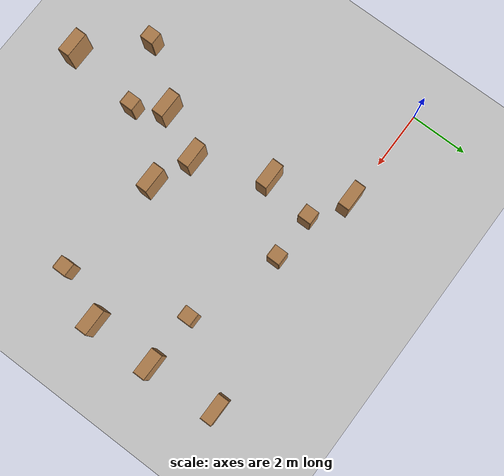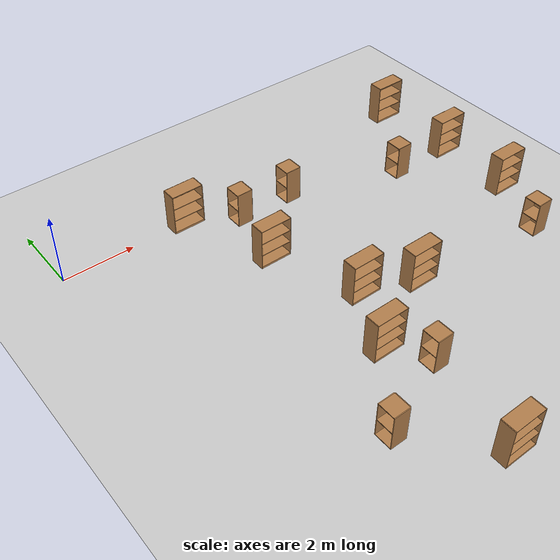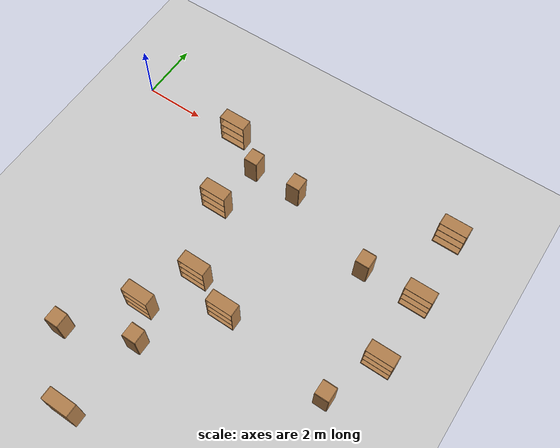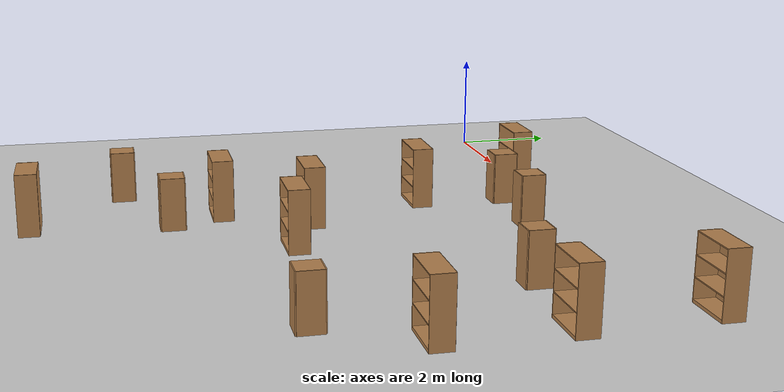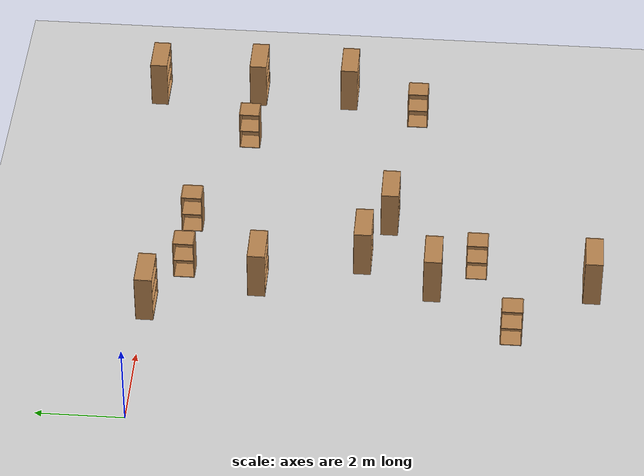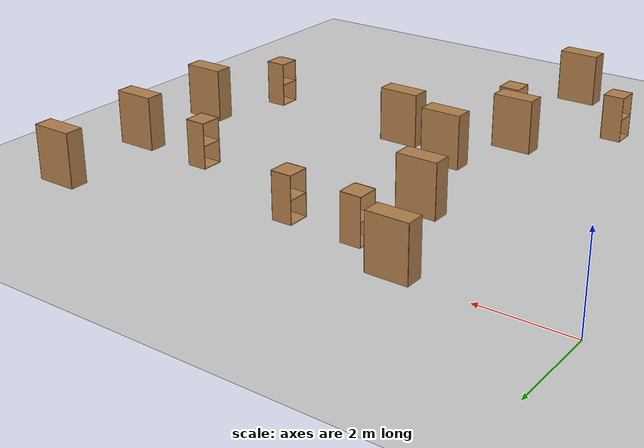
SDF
<sdf version="1.6">
 <world name="default">
  <model name="ground_plane">
   <static>1</static>
   <link name="link">
    <collision name="collision">
     <geometry><plane><normal>0 0 1</normal><size>100 100</size></plane></geometry>
     <surface><friction><ode><mu>100</mu><mu2>50</mu2></ode></friction></surface>
    </collision>
    <visual name="visual">
     <cast_shadows>0</cast_shadows>
     <geometry><plane><normal>0 0 1</normal><size>100 100</size></plane></geometry>
     <material>
      <script><uri>file://media/materials/scripts/gazebo.material</uri><name>Gazebo/Grey</name></script>
     </material>
    </visual>
   </link>
  </model>
  <model name="bookshelf_22">
   <static>1</static>
   <link name="link">
    <inertial><mass>1</mass></inertial>
    <collision name="back">
     <pose>0 0.005 0.6 0 -0 0</pose>
     <geometry><box><size>0.9 0.01 1.2</size></box></geometry>
    </collision>
    <visual name="visual1">
     <pose>0 0.005 0.6 0 -0 0</pose>
     <geometry><box><size>0.9 0.01 1.2</size></box></geometry>
     <material>
      <script><uri>file://media/materials/scripts/gazebo.material</uri><name>Gazebo/Wood</name></script>
     </material>
    </visual>
    <collision name="left_side">
     <pose>0.45 -0.195 0.6 0 -0 0</pose>
     <geometry><box><size>0.02 0.4 1.2</size></box></geometry>
    </collision>
    <visual name="visual2">
     <pose>0.45 -0.195 0.6 0 -0 0</pose>
     <geometry><box><size>0.02 0.4 1.2</size></box></geometry>
     <material>
      <script><uri>file://media/materials/scripts/gazebo.material</uri><name>Gazebo/Wood</name></script>
     </material>
    </visual>
    <collision name="right_side">
     <pose>-0.45 -0.195 0.6 0 -0 0</pose>
     <geometry><box><size>0.02 0.4 1.2</size></box></geometry>
    </collision>
    <visual name="visual3">
     <pose>-0.45 -0.195 0.6 0 -0 0</pose>
     <geometry><box><size>0.02 0.4 1.2</size></box></geometry>
     <material>
      <script><uri>file://media/materials/scripts/gazebo.material</uri><name>Gazebo/Wood</name></script>
     </material>
    </visual>
    <collision name="bottom">
     <pose>0 -0.195 0.03 0 -0 0</pose>
     <geometry><box><size>0.88 0.4 0.06</size></box></geometry>
    </collision>
    <visual name="visual4">
     <pose>0 -0.195 0.03 0 -0 0</pose>
     <geometry><box><size>0.88 0.4 0.06</size></box></geometry>
     <material>
      <script><uri>file://media/materials/scripts/gazebo.material</uri><name>Gazebo/Wood</name></script>
     </material>
    </visual>
    <collision name="top">
     <pose>0 -0.195 1.19 0 -0 0</pose>
     <geometry><box><size>0.88 0.4 0.02</size></box></geometry>
    </collision>
    <visual name="visual5">
     <pose>0 -0.195 1.19 0 -0 0</pose>
     <geometry><box><size>0.88 0.4 0.02</size></box></geometry>
     <material>
      <script><uri>file://media/materials/scripts/gazebo.material</uri><name>Gazebo/Wood</name></script>
     </material>
    </visual>
    <collision name="low_shelf">
     <pose>0 -0.195 0.43 0 -0 0</pose>
     <geometry><box><size>0.88 0.4 0.02</size></box></geometry>
    </collision>
    <visual name="visual6">
     <pose>0 -0.195 0.43 0 -0 0</pose>
     <geometry><box><size>0.88 0.4 0.02</size></box></geometry>
     <material>
      <script><uri>file://media/materials/scripts/gazebo.material</uri><name>Gazebo/Wood</name></script>
     </material>
    </visual>
    <collision name="high_shelf">
     <pose>0 -0.195 0.8 0 -0 0</pose>
     <geometry><box><size>0.88 0.4 0.02</size></box></geometry>
    </collision>
    <visual name="visual7">
     <pose>0 -0.195 0.8 0 -0 0</pose>
     <geometry><box><size>0.88 0.4 0.02</size></box></geometry>
     <material>
      <script><uri>file://media/materials/scripts/gazebo.material</uri><name>Gazebo/Wood</name></script>
     </material>
    </visual>
   </link>
   <pose>3.59906 0.149441 0 0 -0 0</pose>
  </model>
  <model name="cabinet_23">
   <static>1</static>
   <link name="cabinet_bottom_plate">
    <inertial>
     <pose>0 0 -1 0 -0 0</pose>
     <inertia><ixx>2.05</ixx><ixy>0</ixy><ixz>0</ixz><iyy>2.05</iyy><iyz>0</iyz><izz>2.05</izz></inertia>
     <mass>25</mass>
    </inertial>
    <collision name="cabinet_bottom_plate_geom">
     <pose>0 0 0.01 0 -0 0</pose>
     <geometry><box><size>0.45 0.45 0.02</size></box></geometry>
    </collision>
    <visual name="cabinet_bottom_plate_geom_visual">
     <pose>0 0 0.01 0 -0 0</pose>
     <geometry><box><size>0.45 0.45 0.02</size></box></geometry>
     <material>
      <script><uri>file://media/materials/scripts/gazebo.material</uri><name>Gazebo/Wood</name></script>
     </material>
    </visual>
    <collision name="cabinet_bottom_plate_geom_cabinet_back_plate">
     <pose>0.235 0 0.51 0 -0 0</pose>
     <geometry><box><size>0.02 0.45 1.02</size></box></geometry>
    </collision>
    <visual name="cabinet_bottom_plate_geom_cabinet_back_plate_visual">
     <pose>0.235 0 0.51 0 -0 0</pose>
     <geometry><box><size>0.02 0.45 1.02</size></box></geometry>
     <material>
      <script><uri>file://media/materials/scripts/gazebo.material</uri><name>Gazebo/Wood</name></script>
     </material>
    </visual>
    <collision name="cabinet_bottom_plate_geom_cabinet_left_plate">
     <pose>0 0.235 0.51 0 -0 0</pose>
     <geometry><box><size>0.45 0.02 1.02</size></box></geometry>
    </collision>
    <visual name="cabinet_bottom_plate_geom_cabinet_left_plate_visual">
     <pose>0 0.235 0.51 0 -0 0</pose>
     <geometry><box><size>0.45 0.02 1.02</size></box></geometry>
     <material>
      <script><uri>file://media/materials/scripts/gazebo.material</uri><name>Gazebo/Wood</name></script>
     </material>
    </visual>
    <collision name="cabinet_bottom_plate_geom_cabinet_middle_plate">
     <pose>0 0 0.51 0 -0 0</pose>
     <geometry><box><size>0.45 0.45 0.02</size></box></geometry>
    </collision>
    <visual name="cabinet_bottom_plate_geom_cabinet_middle_plate_visual">
     <pose>0 0 0.51 0 -0 0</pose>
     <geometry><box><size>0.45 0.45 0.02</size></box></geometry>
     <material>
      <script><uri>file://media/materials/scripts/gazebo.material</uri><name>Gazebo/Wood</name></script>
     </material>
    </visual>
    <collision name="cabinet_bottom_plate_geom_cabinet_right_plate">
     <pose>0 -0.235 0.51 0 -0 0</pose>
     <geometry><box><size>0.45 0.02 1.02</size></box></geometry>
    </collision>
    <visual name="cabinet_bottom_plate_geom_cabinet_right_plate_visual">
     <pose>0 -0.235 0.51 0 -0 0</pose>
     <geometry><box><size>0.45 0.02 1.02</size></box></geometry>
     <material>
      <script><uri>file://media/materials/scripts/gazebo.material</uri><name>Gazebo/Wood</name></script>
     </material>
    </visual>
    <collision name="cabinet_bottom_plate_geom_cabinet_top_plate">
     <pose>0 0 1.01 0 -0 0</pose>
     <geometry><box><size>0.45 0.45 0.02</size></box></geometry>
    </collision>
    <visual name="cabinet_bottom_plate_geom_cabinet_top_plate_visual">
     <pose>0 0 1.01 0 -0 0</pose>
     <geometry><box><size>0.45 0.45 0.02</size></box></geometry>
     <material>
      <script><uri>file://media/materials/scripts/gazebo.material</uri><name>Gazebo/Wood</name></script>
     </material>
    </visual>
   </link>
   <pose>4.84818 -0.780308 0 0 -0 0</pose>
  </model>
  <model name="cabinet_24">
   <static>1</static>
   <link name="cabinet_bottom_plate">
    <inertial>
     <pose>0 0 -1 0 -0 0</pose>
     <inertia><ixx>2.05</ixx><ixy>0</ixy><ixz>0</ixz><iyy>2.05</iyy><iyz>0</iyz><izz>2.05</izz></inertia>
     <mass>25</mass>
    </inertial>
    <collision name="cabinet_bottom_plate_geom">
     <pose>0 0 0.01 0 -0 0</pose>
     <geometry><box><size>0.45 0.45 0.02</size></box></geometry>
    </collision>
    <visual name="cabinet_bottom_plate_geom_visual">
     <pose>0 0 0.01 0 -0 0</pose>
     <geometry><box><size>0.45 0.45 0.02</size></box></geometry>
     <material>
      <script><uri>file://media/materials/scripts/gazebo.material</uri><name>Gazebo/Wood</name></script>
     </material>
    </visual>
    <collision name="cabinet_bottom_plate_geom_cabinet_back_plate">
     <pose>0.235 0 0.51 0 -0 0</pose>
     <geometry><box><size>0.02 0.45 1.02</size></box></geometry>
    </collision>
    <visual name="cabinet_bottom_plate_geom_cabinet_back_plate_visual">
     <pose>0.235 0 0.51 0 -0 0</pose>
     <geometry><box><size>0.02 0.45 1.02</size></box></geometry>
     <material>
      <script><uri>file://media/materials/scripts/gazebo.material</uri><name>Gazebo/Wood</name></script>
     </material>
    </visual>
    <collision name="cabinet_bottom_plate_geom_cabinet_left_plate">
     <pose>0 0.235 0.51 0 -0 0</pose>
     <geometry><box><size>0.45 0.02 1.02</size></box></geometry>
    </collision>
    <visual name="cabinet_bottom_plate_geom_cabinet_left_plate_visual">
     <pose>0 0.235 0.51 0 -0 0</pose>
     <geometry><box><size>0.45 0.02 1.02</size></box></geometry>
     <material>
      <script><uri>file://media/materials/scripts/gazebo.material</uri><name>Gazebo/Wood</name></script>
     </material>
    </visual>
    <collision name="cabinet_bottom_plate_geom_cabinet_middle_plate">
     <pose>0 0 0.51 0 -0 0</pose>
     <geometry><box><size>0.45 0.45 0.02</size></box></geometry>
    </collision>
    <visual name="cabinet_bottom_plate_geom_cabinet_middle_plate_visual">
     <pose>0 0 0.51 0 -0 0</pose>
     <geometry><box><size>0.45 0.45 0.02</size></box></geometry>
     <material>
      <script><uri>file://media/materials/scripts/gazebo.material</uri><name>Gazebo/Wood</name></script>
     </material>
    </visual>
    <collision name="cabinet_bottom_plate_geom_cabinet_right_plate">
     <pose>0 -0.235 0.51 0 -0 0</pose>
     <geometry><box><size>0.45 0.02 1.02</size></box></geometry>
    </collision>
    <visual name="cabinet_bottom_plate_geom_cabinet_right_plate_visual">
     <pose>0 -0.235 0.51 0 -0 0</pose>
     <geometry><box><size>0.45 0.02 1.02</size></box></geometry>
     <material>
      <script><uri>file://media/materials/scripts/gazebo.material</uri><name>Gazebo/Wood</name></script>
     </material>
    </visual>
    <collision name="cabinet_bottom_plate_geom_cabinet_top_plate">
     <pose>0 0 1.01 0 -0 0</pose>
     <geometry><box><size>0.45 0.45 0.02</size></box></geometry>
    </collision>
    <visual name="cabinet_bottom_plate_geom_cabinet_top_plate_visual">
     <pose>0 0 1.01 0 -0 0</pose>
     <geometry><box><size>0.45 0.45 0.02</size></box></geometry>
     <material>
      <script><uri>file://media/materials/scripts/gazebo.material</uri><name>Gazebo/Wood</name></script>
     </material>
    </visual>
   </link>
   <pose>6.45007 -0.797317 0 0 -0 0</pose>
  </model>
  <model name="bookshelf_28">
   <static>1</static>
   <link name="link">
    <inertial><mass>1</mass></inertial>
    <collision name="back">
     <pose>0 0.005 0.6 0 -0 0</pose>
     <geometry><box><size>0.9 0.01 1.2</size></box></geometry>
    </collision>
    <visual name="visual1">
     <pose>0 0.005 0.6 0 -0 0</pose>
     <geometry><box><size>0.9 0.01 1.2</size></box></geometry>
     <material>
      <script><uri>file://media/materials/scripts/gazebo.material</uri><name>Gazebo/Wood</name></script>
     </material>
    </visual>
    <collision name="left_side">
     <pose>0.45 -0.195 0.6 0 -0 0</pose>
     <geometry><box><size>0.02 0.4 1.2</size></box></geometry>
    </collision>
    <visual name="visual2">
     <pose>0.45 -0.195 0.6 0 -0 0</pose>
     <geometry><box><size>0.02 0.4 1.2</size></box></geometry>
     <material>
      <script><uri>file://media/materials/scripts/gazebo.material</uri><name>Gazebo/Wood</name></script>
     </material>
    </visual>
    <collision name="right_side">
     <pose>-0.45 -0.195 0.6 0 -0 0</pose>
     <geometry><box><size>0.02 0.4 1.2</size></box></geometry>
    </collision>
    <visual name="visual3">
     <pose>-0.45 -0.195 0.6 0 -0 0</pose>
     <geometry><box><size>0.02 0.4 1.2</size></box></geometry>
     <material>
      <script><uri>file://media/materials/scripts/gazebo.material</uri><name>Gazebo/Wood</name></script>
     </material>
    </visual>
    <collision name="bottom">
     <pose>0 -0.195 0.03 0 -0 0</pose>
     <geometry><box><size>0.88 0.4 0.06</size></box></geometry>
    </collision>
    <visual name="visual4">
     <pose>0 -0.195 0.03 0 -0 0</pose>
     <geometry><box><size>0.88 0.4 0.06</size></box></geometry>
     <material>
      <script><uri>file://media/materials/scripts/gazebo.material</uri><name>Gazebo/Wood</name></script>
     </material>
    </visual>
    <collision name="top">
     <pose>0 -0.195 1.19 0 -0 0</pose>
     <geometry><box><size>0.88 0.4 0.02</size></box></geometry>
    </collision>
    <visual name="visual5">
     <pose>0 -0.195 1.19 0 -0 0</pose>
     <geometry><box><size>0.88 0.4 0.02</size></box></geometry>
     <material>
      <script><uri>file://media/materials/scripts/gazebo.material</uri><name>Gazebo/Wood</name></script>
     </material>
    </visual>
    <collision name="low_shelf">
     <pose>0 -0.195 0.43 0 -0 0</pose>
     <geometry><box><size>0.88 0.4 0.02</size></box></geometry>
    </collision>
    <visual name="visual6">
     <pose>0 -0.195 0.43 0 -0 0</pose>
     <geometry><box><size>0.88 0.4 0.02</size></box></geometry>
     <material>
      <script><uri>file://media/materials/scripts/gazebo.material</uri><name>Gazebo/Wood</name></script>
     </material>
    </visual>
    <collision name="high_shelf">
     <pose>0 -0.195 0.8 0 -0 0</pose>
     <geometry><box><size>0.88 0.4 0.02</size></box></geometry>
    </collision>
    <visual name="visual7">
     <pose>0 -0.195 0.8 0 -0 0</pose>
     <geometry><box><size>0.88 0.4 0.02</size></box></geometry>
     <material>
      <script><uri>file://media/materials/scripts/gazebo.material</uri><name>Gazebo/Wood</name></script>
     </material>
    </visual>
   </link>
   <pose>4.57765 -2.30177 0 0 -0 0</pose>
  </model>
  <model name="bookshelf_29">
   <static>1</static>
   <link name="link">
    <inertial><mass>1</mass></inertial>
    <collision name="back">
     <pose>0 0.005 0.6 0 -0 0</pose>
     <geometry><box><size>0.9 0.01 1.2</size></box></geometry>
    </collision>
    <visual name="visual1">
     <pose>0 0.005 0.6 0 -0 0</pose>
     <geometry><box><size>0.9 0.01 1.2</size></box></geometry>
     <material>
      <script><uri>file://media/materials/scripts/gazebo.material</uri><name>Gazebo/Wood</name></script>
     </material>
    </visual>
    <collision name="left_side">
     <pose>0.45 -0.195 0.6 0 -0 0</pose>
     <geometry><box><size>0.02 0.4 1.2</size></box></geometry>
    </collision>
    <visual name="visual2">
     <pose>0.45 -0.195 0.6 0 -0 0</pose>
     <geometry><box><size>0.02 0.4 1.2</size></box></geometry>
     <material>
      <script><uri>file://media/materials/scripts/gazebo.material</uri><name>Gazebo/Wood</name></script>
     </material>
    </visual>
    <collision name="right_side">
     <pose>-0.45 -0.195 0.6 0 -0 0</pose>
     <geometry><box><size>0.02 0.4 1.2</size></box></geometry>
    </collision>
    <visual name="visual3">
     <pose>-0.45 -0.195 0.6 0 -0 0</pose>
     <geometry><box><size>0.02 0.4 1.2</size></box></geometry>
     <material>
      <script><uri>file://media/materials/scripts/gazebo.material</uri><name>Gazebo/Wood</name></script>
     </material>
    </visual>
    <collision name="bottom">
     <pose>0 -0.195 0.03 0 -0 0</pose>
     <geometry><box><size>0.88 0.4 0.06</size></box></geometry>
    </collision>
    <visual name="visual4">
     <pose>0 -0.195 0.03 0 -0 0</pose>
     <geometry><box><size>0.88 0.4 0.06</size></box></geometry>
     <material>
      <script><uri>file://media/materials/scripts/gazebo.material</uri><name>Gazebo/Wood</name></script>
     </material>
    </visual>
    <collision name="top">
     <pose>0 -0.195 1.19 0 -0 0</pose>
     <geometry><box><size>0.88 0.4 0.02</size></box></geometry>
    </collision>
    <visual name="visual5">
     <pose>0 -0.195 1.19 0 -0 0</pose>
     <geometry><box><size>0.88 0.4 0.02</size></box></geometry>
     <material>
      <script><uri>file://media/materials/scripts/gazebo.material</uri><name>Gazebo/Wood</name></script>
     </material>
    </visual>
    <collision name="low_shelf">
     <pose>0 -0.195 0.43 0 -0 0</pose>
     <geometry><box><size>0.88 0.4 0.02</size></box></geometry>
    </collision>
    <visual name="visual6">
     <pose>0 -0.195 0.43 0 -0 0</pose>
     <geometry><box><size>0.88 0.4 0.02</size></box></geometry>
     <material>
      <script><uri>file://media/materials/scripts/gazebo.material</uri><name>Gazebo/Wood</name></script>
     </material>
    </visual>
    <collision name="high_shelf">
     <pose>0 -0.195 0.8 0 -0 0</pose>
     <geometry><box><size>0.88 0.4 0.02</size></box></geometry>
    </collision>
    <visual name="visual7">
     <pose>0 -0.195 0.8 0 -0 0</pose>
     <geometry><box><size>0.88 0.4 0.02</size></box></geometry>
     <material>
      <script><uri>file://media/materials/scripts/gazebo.material</uri><name>Gazebo/Wood</name></script>
     </material>
    </visual>
   </link>
   <pose>5.49733 -4.66083 0 0 -0 0</pose>
  </model>
  <model name="bookshelf_30">
   <static>1</static>
   <link name="link">
    <inertial><mass>1</mass></inertial>
    <collision name="back">
     <pose>0 0.005 0.6 0 -0 0</pose>
     <geometry><box><size>0.9 0.01 1.2</size></box></geometry>
    </collision>
    <visual name="visual1">
     <pose>0 0.005 0.6 0 -0 0</pose>
     <geometry><box><size>0.9 0.01 1.2</size></box></geometry>
     <material>
      <script><uri>file://media/materials/scripts/gazebo.material</uri><name>Gazebo/Wood</name></script>
     </material>
    </visual>
    <collision name="left_side">
     <pose>0.45 -0.195 0.6 0 -0 0</pose>
     <geometry><box><size>0.02 0.4 1.2</size></box></geometry>
    </collision>
    <visual name="visual2">
     <pose>0.45 -0.195 0.6 0 -0 0</pose>
     <geometry><box><size>0.02 0.4 1.2</size></box></geometry>
     <material>
      <script><uri>file://media/materials/scripts/gazebo.material</uri><name>Gazebo/Wood</name></script>
     </material>
    </visual>
    <collision name="right_side">
     <pose>-0.45 -0.195 0.6 0 -0 0</pose>
     <geometry><box><size>0.02 0.4 1.2</size></box></geometry>
    </collision>
    <visual name="visual3">
     <pose>-0.45 -0.195 0.6 0 -0 0</pose>
     <geometry><box><size>0.02 0.4 1.2</size></box></geometry>
     <material>
      <script><uri>file://media/materials/scripts/gazebo.material</uri><name>Gazebo/Wood</name></script>
     </material>
    </visual>
    <collision name="bottom">
     <pose>0 -0.195 0.03 0 -0 0</pose>
     <geometry><box><size>0.88 0.4 0.06</size></box></geometry>
    </collision>
    <visual name="visual4">
     <pose>0 -0.195 0.03 0 -0 0</pose>
     <geometry><box><size>0.88 0.4 0.06</size></box></geometry>
     <material>
      <script><uri>file://media/materials/scripts/gazebo.material</uri><name>Gazebo/Wood</name></script>
     </material>
    </visual>
    <collision name="top">
     <pose>0 -0.195 1.19 0 -0 0</pose>
     <geometry><box><size>0.88 0.4 0.02</size></box></geometry>
    </collision>
    <visual name="visual5">
     <pose>0 -0.195 1.19 0 -0 0</pose>
     <geometry><box><size>0.88 0.4 0.02</size></box></geometry>
     <material>
      <script><uri>file://media/materials/scripts/gazebo.material</uri><name>Gazebo/Wood</name></script>
     </material>
    </visual>
    <collision name="low_shelf">
     <pose>0 -0.195 0.43 0 -0 0</pose>
     <geometry><box><size>0.88 0.4 0.02</size></box></geometry>
    </collision>
    <visual name="visual6">
     <pose>0 -0.195 0.43 0 -0 0</pose>
     <geometry><box><size>0.88 0.4 0.02</size></box></geometry>
     <material>
      <script><uri>file://media/materials/scripts/gazebo.material</uri><name>Gazebo/Wood</name></script>
     </material>
    </visual>
    <collision name="high_shelf">
     <pose>0 -0.195 0.8 0 -0 0</pose>
     <geometry><box><size>0.88 0.4 0.02</size></box></geometry>
    </collision>
    <visual name="visual7">
     <pose>0 -0.195 0.8 0 -0 0</pose>
     <geometry><box><size>0.88 0.4 0.02</size></box></geometry>
     <material>
      <script><uri>file://media/materials/scripts/gazebo.material</uri><name>Gazebo/Wood</name></script>
     </material>
    </visual>
   </link>
   <pose>6.89646 -5.20465 0 0 -0 0</pose>
  </model>
  <model name="bookshelf_31">
   <static>1</static>
   <link name="link">
    <inertial><mass>1</mass></inertial>
    <collision name="back">
     <pose>0 0.005 0.6 0 -0 0</pose>
     <geometry><box><size>0.9 0.01 1.2</size></box></geometry>
    </collision>
    <visual name="visual1">
     <pose>0 0.005 0.6 0 -0 0</pose>
     <geometry><box><size>0.9 0.01 1.2</size></box></geometry>
     <material>
      <script><uri>file://media/materials/scripts/gazebo.material</uri><name>Gazebo/Wood</name></script>
     </material>
    </visual>
    <collision name="left_side">
     <pose>0.45 -0.195 0.6 0 -0 0</pose>
     <geometry><box><size>0.02 0.4 1.2</size></box></geometry>
    </collision>
    <visual name="visual2">
     <pose>0.45 -0.195 0.6 0 -0 0</pose>
     <geometry><box><size>0.02 0.4 1.2</size></box></geometry>
     <material>
      <script><uri>file://media/materials/scripts/gazebo.material</uri><name>Gazebo/Wood</name></script>
     </material>
    </visual>
    <collision name="right_side">
     <pose>-0.45 -0.195 0.6 0 -0 0</pose>
     <geometry><box><size>0.02 0.4 1.2</size></box></geometry>
    </collision>
    <visual name="visual3">
     <pose>-0.45 -0.195 0.6 0 -0 0</pose>
     <geometry><box><size>0.02 0.4 1.2</size></box></geometry>
     <material>
      <script><uri>file://media/materials/scripts/gazebo.material</uri><name>Gazebo/Wood</name></script>
     </material>
    </visual>
    <collision name="bottom">
     <pose>0 -0.195 0.03 0 -0 0</pose>
     <geometry><box><size>0.88 0.4 0.06</size></box></geometry>
    </collision>
    <visual name="visual4">
     <pose>0 -0.195 0.03 0 -0 0</pose>
     <geometry><box><size>0.88 0.4 0.06</size></box></geometry>
     <material>
      <script><uri>file://media/materials/scripts/gazebo.material</uri><name>Gazebo/Wood</name></script>
     </material>
    </visual>
    <collision name="top">
     <pose>0 -0.195 1.19 0 -0 0</pose>
     <geometry><box><size>0.88 0.4 0.02</size></box></geometry>
    </collision>
    <visual name="visual5">
     <pose>0 -0.195 1.19 0 -0 0</pose>
     <geometry><box><size>0.88 0.4 0.02</size></box></geometry>
     <material>
      <script><uri>file://media/materials/scripts/gazebo.material</uri><name>Gazebo/Wood</name></script>
     </material>
    </visual>
    <collision name="low_shelf">
     <pose>0 -0.195 0.43 0 -0 0</pose>
     <geometry><box><size>0.88 0.4 0.02</size></box></geometry>
    </collision>
    <visual name="visual6">
     <pose>0 -0.195 0.43 0 -0 0</pose>
     <geometry><box><size>0.88 0.4 0.02</size></box></geometry>
     <material>
      <script><uri>file://media/materials/scripts/gazebo.material</uri><name>Gazebo/Wood</name></script>
     </material>
    </visual>
    <collision name="high_shelf">
     <pose>0 -0.195 0.8 0 -0 0</pose>
     <geometry><box><size>0.88 0.4 0.02</size></box></geometry>
    </collision>
    <visual name="visual7">
     <pose>0 -0.195 0.8 0 -0 0</pose>
     <geometry><box><size>0.88 0.4 0.02</size></box></geometry>
     <material>
      <script><uri>file://media/materials/scripts/gazebo.material</uri><name>Gazebo/Wood</name></script>
     </material>
    </visual>
   </link>
   <pose>4.69604 -6.30017 0 0 -0 0</pose>
  </model>
  <model name="cabinet_36">
   <static>1</static>
   <link name="cabinet_bottom_plate">
    <inertial>
     <pose>0 0 -1 0 -0 0</pose>
     <inertia><ixx>2.05</ixx><ixy>0</ixy><ixz>0</ixz><iyy>2.05</iyy><iyz>0</iyz><izz>2.05</izz></inertia>
     <mass>25</mass>
    </inertial>
    <collision name="cabinet_bottom_plate_geom">
     <pose>0 0 0.01 0 -0 0</pose>
     <geometry><box><size>0.45 0.45 0.02</size></box></geometry>
    </collision>
    <visual name="cabinet_bottom_plate_geom_visual">
     <pose>0 0 0.01 0 -0 0</pose>
     <geometry><box><size>0.45 0.45 0.02</size></box></geometry>
     <material>
      <script><uri>file://media/materials/scripts/gazebo.material</uri><name>Gazebo/Wood</name></script>
     </material>
    </visual>
    <collision name="cabinet_bottom_plate_geom_cabinet_back_plate">
     <pose>0.235 0 0.51 0 -0 0</pose>
     <geometry><box><size>0.02 0.45 1.02</size></box></geometry>
    </collision>
    <visual name="cabinet_bottom_plate_geom_cabinet_back_plate_visual">
     <pose>0.235 0 0.51 0 -0 0</pose>
     <geometry><box><size>0.02 0.45 1.02</size></box></geometry>
     <material>
      <script><uri>file://media/materials/scripts/gazebo.material</uri><name>Gazebo/Wood</name></script>
     </material>
    </visual>
    <collision name="cabinet_bottom_plate_geom_cabinet_left_plate">
     <pose>0 0.235 0.51 0 -0 0</pose>
     <geometry><box><size>0.45 0.02 1.02</size></box></geometry>
    </collision>
    <visual name="cabinet_bottom_plate_geom_cabinet_left_plate_visual">
     <pose>0 0.235 0.51 0 -0 0</pose>
     <geometry><box><size>0.45 0.02 1.02</size></box></geometry>
     <material>
      <script><uri>file://media/materials/scripts/gazebo.material</uri><name>Gazebo/Wood</name></script>
     </material>
    </visual>
    <collision name="cabinet_bottom_plate_geom_cabinet_middle_plate">
     <pose>0 0 0.51 0 -0 0</pose>
     <geometry><box><size>0.45 0.45 0.02</size></box></geometry>
    </collision>
    <visual name="cabinet_bottom_plate_geom_cabinet_middle_plate_visual">
     <pose>0 0 0.51 0 -0 0</pose>
     <geometry><box><size>0.45 0.45 0.02</size></box></geometry>
     <material>
      <script><uri>file://media/materials/scripts/gazebo.material</uri><name>Gazebo/Wood</name></script>
     </material>
    </visual>
    <collision name="cabinet_bottom_plate_geom_cabinet_right_plate">
     <pose>0 -0.235 0.51 0 -0 0</pose>
     <geometry><box><size>0.45 0.02 1.02</size></box></geometry>
    </collision>
    <visual name="cabinet_bottom_plate_geom_cabinet_right_plate_visual">
     <pose>0 -0.235 0.51 0 -0 0</pose>
     <geometry><box><size>0.45 0.02 1.02</size></box></geometry>
     <material>
      <script><uri>file://media/materials/scripts/gazebo.material</uri><name>Gazebo/Wood</name></script>
     </material>
    </visual>
    <collision name="cabinet_bottom_plate_geom_cabinet_top_plate">
     <pose>0 0 1.01 0 -0 0</pose>
     <geometry><box><size>0.45 0.45 0.02</size></box></geometry>
    </collision>
    <visual name="cabinet_bottom_plate_geom_cabinet_top_plate_visual">
     <pose>0 0 1.01 0 -0 0</pose>
     <geometry><box><size>0.45 0.45 0.02</size></box></geometry>
     <material>
      <script><uri>file://media/materials/scripts/gazebo.material</uri><name>Gazebo/Wood</name></script>
     </material>
    </visual>
   </link>
   <pose>3.16675 -8.33237 0 0 -0 0</pose>
  </model>
  <model name="bookshelf_37">
   <static>1</static>
   <link name="link">
    <inertial><mass>1</mass></inertial>
    <collision name="back">
     <pose>0 0.005 0.6 0 -0 0</pose>
     <geometry><box><size>0.9 0.01 1.2</size></box></geometry>
    </collision>
    <visual name="visual1">
     <pose>0 0.005 0.6 0 -0 0</pose>
     <geometry><box><size>0.9 0.01 1.2</size></box></geometry>
     <material>
      <script><uri>file://media/materials/scripts/gazebo.material</uri><name>Gazebo/Wood</name></script>
     </material>
    </visual>
    <collision name="left_side">
     <pose>0.45 -0.195 0.6 0 -0 0</pose>
     <geometry><box><size>0.02 0.4 1.2</size></box></geometry>
    </collision>
    <visual name="visual2">
     <pose>0.45 -0.195 0.6 0 -0 0</pose>
     <geometry><box><size>0.02 0.4 1.2</size></box></geometry>
     <material>
      <script><uri>file://media/materials/scripts/gazebo.material</uri><name>Gazebo/Wood</name></script>
     </material>
    </visual>
    <collision name="right_side">
     <pose>-0.45 -0.195 0.6 0 -0 0</pose>
     <geometry><box><size>0.02 0.4 1.2</size></box></geometry>
    </collision>
    <visual name="visual3">
     <pose>-0.45 -0.195 0.6 0 -0 0</pose>
     <geometry><box><size>0.02 0.4 1.2</size></box></geometry>
     <material>
      <script><uri>file://media/materials/scripts/gazebo.material</uri><name>Gazebo/Wood</name></script>
     </material>
    </visual>
    <collision name="bottom">
     <pose>0 -0.195 0.03 0 -0 0</pose>
     <geometry><box><size>0.88 0.4 0.06</size></box></geometry>
    </collision>
    <visual name="visual4">
     <pose>0 -0.195 0.03 0 -0 0</pose>
     <geometry><box><size>0.88 0.4 0.06</size></box></geometry>
     <material>
      <script><uri>file://media/materials/scripts/gazebo.material</uri><name>Gazebo/Wood</name></script>
     </material>
    </visual>
    <collision name="top">
     <pose>0 -0.195 1.19 0 -0 0</pose>
     <geometry><box><size>0.88 0.4 0.02</size></box></geometry>
    </collision>
    <visual name="visual5">
     <pose>0 -0.195 1.19 0 -0 0</pose>
     <geometry><box><size>0.88 0.4 0.02</size></box></geometry>
     <material>
      <script><uri>file://media/materials/scripts/gazebo.material</uri><name>Gazebo/Wood</name></script>
     </material>
    </visual>
    <collision name="low_shelf">
     <pose>0 -0.195 0.43 0 -0 0</pose>
     <geometry><box><size>0.88 0.4 0.02</size></box></geometry>
    </collision>
    <visual name="visual6">
     <pose>0 -0.195 0.43 0 -0 0</pose>
     <geometry><box><size>0.88 0.4 0.02</size></box></geometry>
     <material>
      <script><uri>file://media/materials/scripts/gazebo.material</uri><name>Gazebo/Wood</name></script>
     </material>
    </visual>
    <collision name="high_shelf">
     <pose>0 -0.195 0.8 0 -0 0</pose>
     <geometry><box><size>0.88 0.4 0.02</size></box></geometry>
    </collision>
    <visual name="visual7">
     <pose>0 -0.195 0.8 0 -0 0</pose>
     <geometry><box><size>0.88 0.4 0.02</size></box></geometry>
     <material>
      <script><uri>file://media/materials/scripts/gazebo.material</uri><name>Gazebo/Wood</name></script>
     </material>
    </visual>
   </link>
   <pose>11.2942 0.695098 0 0 -0 0</pose>
  </model>
  <model name="bookshelf_38">
   <static>1</static>
   <link name="link">
    <inertial><mass>1</mass></inertial>
    <collision name="back">
     <pose>0 0.005 0.6 0 -0 0</pose>
     <geometry><box><size>0.9 0.01 1.2</size></box></geometry>
    </collision>
    <visual name="visual1">
     <pose>0 0.005 0.6 0 -0 0</pose>
     <geometry><box><size>0.9 0.01 1.2</size></box></geometry>
     <material>
      <script><uri>file://media/materials/scripts/gazebo.material</uri><name>Gazebo/Wood</name></script>
     </material>
    </visual>
    <collision name="left_side">
     <pose>0.45 -0.195 0.6 0 -0 0</pose>
     <geometry><box><size>0.02 0.4 1.2</size></box></geometry>
    </collision>
    <visual name="visual2">
     <pose>0.45 -0.195 0.6 0 -0 0</pose>
     <geometry><box><size>0.02 0.4 1.2</size></box></geometry>
     <material>
      <script><uri>file://media/materials/scripts/gazebo.material</uri><name>Gazebo/Wood</name></script>
     </material>
    </visual>
    <collision name="right_side">
     <pose>-0.45 -0.195 0.6 0 -0 0</pose>
     <geometry><box><size>0.02 0.4 1.2</size></box></geometry>
    </collision>
    <visual name="visual3">
     <pose>-0.45 -0.195 0.6 0 -0 0</pose>
     <geometry><box><size>0.02 0.4 1.2</size></box></geometry>
     <material>
      <script><uri>file://media/materials/scripts/gazebo.material</uri><name>Gazebo/Wood</name></script>
     </material>
    </visual>
    <collision name="bottom">
     <pose>0 -0.195 0.03 0 -0 0</pose>
     <geometry><box><size>0.88 0.4 0.06</size></box></geometry>
    </collision>
    <visual name="visual4">
     <pose>0 -0.195 0.03 0 -0 0</pose>
     <geometry><box><size>0.88 0.4 0.06</size></box></geometry>
     <material>
      <script><uri>file://media/materials/scripts/gazebo.material</uri><name>Gazebo/Wood</name></script>
     </material>
    </visual>
    <collision name="top">
     <pose>0 -0.195 1.19 0 -0 0</pose>
     <geometry><box><size>0.88 0.4 0.02</size></box></geometry>
    </collision>
    <visual name="visual5">
     <pose>0 -0.195 1.19 0 -0 0</pose>
     <geometry><box><size>0.88 0.4 0.02</size></box></geometry>
     <material>
      <script><uri>file://media/materials/scripts/gazebo.material</uri><name>Gazebo/Wood</name></script>
     </material>
    </visual>
    <collision name="low_shelf">
     <pose>0 -0.195 0.43 0 -0 0</pose>
     <geometry><box><size>0.88 0.4 0.02</size></box></geometry>
    </collision>
    <visual name="visual6">
     <pose>0 -0.195 0.43 0 -0 0</pose>
     <geometry><box><size>0.88 0.4 0.02</size></box></geometry>
     <material>
      <script><uri>file://media/materials/scripts/gazebo.material</uri><name>Gazebo/Wood</name></script>
     </material>
    </visual>
    <collision name="high_shelf">
     <pose>0 -0.195 0.8 0 -0 0</pose>
     <geometry><box><size>0.88 0.4 0.02</size></box></geometry>
    </collision>
    <visual name="visual7">
     <pose>0 -0.195 0.8 0 -0 0</pose>
     <geometry><box><size>0.88 0.4 0.02</size></box></geometry>
     <material>
      <script><uri>file://media/materials/scripts/gazebo.material</uri><name>Gazebo/Wood</name></script>
     </material>
    </visual>
   </link>
   <pose>11.4293 -1.72046 0 0 -0 0</pose>
  </model>
  <model name="cabinet_42">
   <static>1</static>
   <link name="cabinet_bottom_plate">
    <inertial>
     <pose>0 0 -1 0 -0 0</pose>
     <inertia><ixx>2.05</ixx><ixy>0</ixy><ixz>0</ixz><iyy>2.05</iyy><iyz>0</iyz><izz>2.05</izz></inertia>
     <mass>25</mass>
    </inertial>
    <collision name="cabinet_bottom_plate_geom">
     <pose>0 0 0.01 0 -0 0</pose>
     <geometry><box><size>0.45 0.45 0.02</size></box></geometry>
    </collision>
    <visual name="cabinet_bottom_plate_geom_visual">
     <pose>0 0 0.01 0 -0 0</pose>
     <geometry><box><size>0.45 0.45 0.02</size></box></geometry>
     <material>
      <script><uri>file://media/materials/scripts/gazebo.material</uri><name>Gazebo/Wood</name></script>
     </material>
    </visual>
    <collision name="cabinet_bottom_plate_geom_cabinet_back_plate">
     <pose>0.235 0 0.51 0 -0 0</pose>
     <geometry><box><size>0.02 0.45 1.02</size></box></geometry>
    </collision>
    <visual name="cabinet_bottom_plate_geom_cabinet_back_plate_visual">
     <pose>0.235 0 0.51 0 -0 0</pose>
     <geometry><box><size>0.02 0.45 1.02</size></box></geometry>
     <material>
      <script><uri>file://media/materials/scripts/gazebo.material</uri><name>Gazebo/Wood</name></script>
     </material>
    </visual>
    <collision name="cabinet_bottom_plate_geom_cabinet_left_plate">
     <pose>0 0.235 0.51 0 -0 0</pose>
     <geometry><box><size>0.45 0.02 1.02</size></box></geometry>
    </collision>
    <visual name="cabinet_bottom_plate_geom_cabinet_left_plate_visual">
     <pose>0 0.235 0.51 0 -0 0</pose>
     <geometry><box><size>0.45 0.02 1.02</size></box></geometry>
     <material>
      <script><uri>file://media/materials/scripts/gazebo.material</uri><name>Gazebo/Wood</name></script>
     </material>
    </visual>
    <collision name="cabinet_bottom_plate_geom_cabinet_middle_plate">
     <pose>0 0 0.51 0 -0 0</pose>
     <geometry><box><size>0.45 0.45 0.02</size></box></geometry>
    </collision>
    <visual name="cabinet_bottom_plate_geom_cabinet_middle_plate_visual">
     <pose>0 0 0.51 0 -0 0</pose>
     <geometry><box><size>0.45 0.45 0.02</size></box></geometry>
     <material>
      <script><uri>file://media/materials/scripts/gazebo.material</uri><name>Gazebo/Wood</name></script>
     </material>
    </visual>
    <collision name="cabinet_bottom_plate_geom_cabinet_right_plate">
     <pose>0 -0.235 0.51 0 -0 0</pose>
     <geometry><box><size>0.45 0.02 1.02</size></box></geometry>
    </collision>
    <visual name="cabinet_bottom_plate_geom_cabinet_right_plate_visual">
     <pose>0 -0.235 0.51 0 -0 0</pose>
     <geometry><box><size>0.45 0.02 1.02</size></box></geometry>
     <material>
      <script><uri>file://media/materials/scripts/gazebo.material</uri><name>Gazebo/Wood</name></script>
     </material>
    </visual>
    <collision name="cabinet_bottom_plate_geom_cabinet_top_plate">
     <pose>0 0 1.01 0 -0 0</pose>
     <geometry><box><size>0.45 0.45 0.02</size></box></geometry>
    </collision>
    <visual name="cabinet_bottom_plate_geom_cabinet_top_plate_visual">
     <pose>0 0 1.01 0 -0 0</pose>
     <geometry><box><size>0.45 0.45 0.02</size></box></geometry>
     <material>
      <script><uri>file://media/materials/scripts/gazebo.material</uri><name>Gazebo/Wood</name></script>
     </material>
    </visual>
   </link>
   <pose>9.56828 -1.85332 0 0 -0 0</pose>
  </model>
  <model name="bookshelf_39">
   <static>1</static>
   <link name="link">
    <inertial><mass>1</mass></inertial>
    <collision name="back">
     <pose>0 0.005 0.6 0 -0 0</pose>
     <geometry><box><size>0.9 0.01 1.2</size></box></geometry>
    </collision>
    <visual name="visual1">
     <pose>0 0.005 0.6 0 -0 0</pose>
     <geometry><box><size>0.9 0.01 1.2</size></box></geometry>
     <material>
      <script><uri>file://media/materials/scripts/gazebo.material</uri><name>Gazebo/Wood</name></script>
     </material>
    </visual>
    <collision name="left_side">
     <pose>0.45 -0.195 0.6 0 -0 0</pose>
     <geometry><box><size>0.02 0.4 1.2</size></box></geometry>
    </collision>
    <visual name="visual2">
     <pose>0.45 -0.195 0.6 0 -0 0</pose>
     <geometry><box><size>0.02 0.4 1.2</size></box></geometry>
     <material>
      <script><uri>file://media/materials/scripts/gazebo.material</uri><name>Gazebo/Wood</name></script>
     </material>
    </visual>
    <collision name="right_side">
     <pose>-0.45 -0.195 0.6 0 -0 0</pose>
     <geometry><box><size>0.02 0.4 1.2</size></box></geometry>
    </collision>
    <visual name="visual3">
     <pose>-0.45 -0.195 0.6 0 -0 0</pose>
     <geometry><box><size>0.02 0.4 1.2</size></box></geometry>
     <material>
      <script><uri>file://media/materials/scripts/gazebo.material</uri><name>Gazebo/Wood</name></script>
     </material>
    </visual>
    <collision name="bottom">
     <pose>0 -0.195 0.03 0 -0 0</pose>
     <geometry><box><size>0.88 0.4 0.06</size></box></geometry>
    </collision>
    <visual name="visual4">
     <pose>0 -0.195 0.03 0 -0 0</pose>
     <geometry><box><size>0.88 0.4 0.06</size></box></geometry>
     <material>
      <script><uri>file://media/materials/scripts/gazebo.material</uri><name>Gazebo/Wood</name></script>
     </material>
    </visual>
    <collision name="top">
     <pose>0 -0.195 1.19 0 -0 0</pose>
     <geometry><box><size>0.88 0.4 0.02</size></box></geometry>
    </collision>
    <visual name="visual5">
     <pose>0 -0.195 1.19 0 -0 0</pose>
     <geometry><box><size>0.88 0.4 0.02</size></box></geometry>
     <material>
      <script><uri>file://media/materials/scripts/gazebo.material</uri><name>Gazebo/Wood</name></script>
     </material>
    </visual>
    <collision name="low_shelf">
     <pose>0 -0.195 0.43 0 -0 0</pose>
     <geometry><box><size>0.88 0.4 0.02</size></box></geometry>
    </collision>
    <visual name="visual6">
     <pose>0 -0.195 0.43 0 -0 0</pose>
     <geometry><box><size>0.88 0.4 0.02</size></box></geometry>
     <material>
      <script><uri>file://media/materials/scripts/gazebo.material</uri><name>Gazebo/Wood</name></script>
     </material>
    </visual>
    <collision name="high_shelf">
     <pose>0 -0.195 0.8 0 -0 0</pose>
     <geometry><box><size>0.88 0.4 0.02</size></box></geometry>
    </collision>
    <visual name="visual7">
     <pose>0 -0.195 0.8 0 -0 0</pose>
     <geometry><box><size>0.88 0.4 0.02</size></box></geometry>
     <material>
      <script><uri>file://media/materials/scripts/gazebo.material</uri><name>Gazebo/Wood</name></script>
     </material>
    </visual>
   </link>
   <pose>11.4311 -3.94634 0 0 -0 0</pose>
  </model>
  <model name="cabinet_43">
   <static>1</static>
   <link name="cabinet_bottom_plate">
    <inertial>
     <pose>0 0 -1 0 -0 0</pose>
     <inertia><ixx>2.05</ixx><ixy>0</ixy><ixz>0</ixz><iyy>2.05</iyy><iyz>0</iyz><izz>2.05</izz></inertia>
     <mass>25</mass>
    </inertial>
    <collision name="cabinet_bottom_plate_geom">
     <pose>0 0 0.01 0 -0 0</pose>
     <geometry><box><size>0.45 0.45 0.02</size></box></geometry>
    </collision>
    <visual name="cabinet_bottom_plate_geom_visual">
     <pose>0 0 0.01 0 -0 0</pose>
     <geometry><box><size>0.45 0.45 0.02</size></box></geometry>
     <material>
      <script><uri>file://media/materials/scripts/gazebo.material</uri><name>Gazebo/Wood</name></script>
     </material>
    </visual>
    <collision name="cabinet_bottom_plate_geom_cabinet_back_plate">
     <pose>0.235 0 0.51 0 -0 0</pose>
     <geometry><box><size>0.02 0.45 1.02</size></box></geometry>
    </collision>
    <visual name="cabinet_bottom_plate_geom_cabinet_back_plate_visual">
     <pose>0.235 0 0.51 0 -0 0</pose>
     <geometry><box><size>0.02 0.45 1.02</size></box></geometry>
     <material>
      <script><uri>file://media/materials/scripts/gazebo.material</uri><name>Gazebo/Wood</name></script>
     </material>
    </visual>
    <collision name="cabinet_bottom_plate_geom_cabinet_left_plate">
     <pose>0 0.235 0.51 0 -0 0</pose>
     <geometry><box><size>0.45 0.02 1.02</size></box></geometry>
    </collision>
    <visual name="cabinet_bottom_plate_geom_cabinet_left_plate_visual">
     <pose>0 0.235 0.51 0 -0 0</pose>
     <geometry><box><size>0.45 0.02 1.02</size></box></geometry>
     <material>
      <script><uri>file://media/materials/scripts/gazebo.material</uri><name>Gazebo/Wood</name></script>
     </material>
    </visual>
    <collision name="cabinet_bottom_plate_geom_cabinet_middle_plate">
     <pose>0 0 0.51 0 -0 0</pose>
     <geometry><box><size>0.45 0.45 0.02</size></box></geometry>
    </collision>
    <visual name="cabinet_bottom_plate_geom_cabinet_middle_plate_visual">
     <pose>0 0 0.51 0 -0 0</pose>
     <geometry><box><size>0.45 0.45 0.02</size></box></geometry>
     <material>
      <script><uri>file://media/materials/scripts/gazebo.material</uri><name>Gazebo/Wood</name></script>
     </material>
    </visual>
    <collision name="cabinet_bottom_plate_geom_cabinet_right_plate">
     <pose>0 -0.235 0.51 0 -0 0</pose>
     <geometry><box><size>0.45 0.02 1.02</size></box></geometry>
    </collision>
    <visual name="cabinet_bottom_plate_geom_cabinet_right_plate_visual">
     <pose>0 -0.235 0.51 0 -0 0</pose>
     <geometry><box><size>0.45 0.02 1.02</size></box></geometry>
     <material>
      <script><uri>file://media/materials/scripts/gazebo.material</uri><name>Gazebo/Wood</name></script>
     </material>
    </visual>
    <collision name="cabinet_bottom_plate_geom_cabinet_top_plate">
     <pose>0 0 1.01 0 -0 0</pose>
     <geometry><box><size>0.45 0.45 0.02</size></box></geometry>
    </collision>
    <visual name="cabinet_bottom_plate_geom_cabinet_top_plate_visual">
     <pose>0 0 1.01 0 -0 0</pose>
     <geometry><box><size>0.45 0.45 0.02</size></box></geometry>
     <material>
      <script><uri>file://media/materials/scripts/gazebo.material</uri><name>Gazebo/Wood</name></script>
     </material>
    </visual>
   </link>
   <pose>10.6536 -5.84913 0 0 -0 0</pose>
  </model>
  <model name="cabinet_44">
   <static>1</static>
   <link name="cabinet_bottom_plate">
    <inertial>
     <pose>0 0 -1 0 -0 0</pose>
     <inertia><ixx>2.05</ixx><ixy>0</ixy><ixz>0</ixz><iyy>2.05</iyy><iyz>0</iyz><izz>2.05</izz></inertia>
     <mass>25</mass>
    </inertial>
    <collision name="cabinet_bottom_plate_geom">
     <pose>0 0 0.01 0 -0 0</pose>
     <geometry><box><size>0.45 0.45 0.02</size></box></geometry>
    </collision>
    <visual name="cabinet_bottom_plate_geom_visual">
     <pose>0 0 0.01 0 -0 0</pose>
     <geometry><box><size>0.45 0.45 0.02</size></box></geometry>
     <material>
      <script><uri>file://media/materials/scripts/gazebo.material</uri><name>Gazebo/Wood</name></script>
     </material>
    </visual>
    <collision name="cabinet_bottom_plate_geom_cabinet_back_plate">
     <pose>0.235 0 0.51 0 -0 0</pose>
     <geometry><box><size>0.02 0.45 1.02</size></box></geometry>
    </collision>
    <visual name="cabinet_bottom_plate_geom_cabinet_back_plate_visual">
     <pose>0.235 0 0.51 0 -0 0</pose>
     <geometry><box><size>0.02 0.45 1.02</size></box></geometry>
     <material>
      <script><uri>file://media/materials/scripts/gazebo.material</uri><name>Gazebo/Wood</name></script>
     </material>
    </visual>
    <collision name="cabinet_bottom_plate_geom_cabinet_left_plate">
     <pose>0 0.235 0.51 0 -0 0</pose>
     <geometry><box><size>0.45 0.02 1.02</size></box></geometry>
    </collision>
    <visual name="cabinet_bottom_plate_geom_cabinet_left_plate_visual">
     <pose>0 0.235 0.51 0 -0 0</pose>
     <geometry><box><size>0.45 0.02 1.02</size></box></geometry>
     <material>
      <script><uri>file://media/materials/scripts/gazebo.material</uri><name>Gazebo/Wood</name></script>
     </material>
    </visual>
    <collision name="cabinet_bottom_plate_geom_cabinet_middle_plate">
     <pose>0 0 0.51 0 -0 0</pose>
     <geometry><box><size>0.45 0.45 0.02</size></box></geometry>
    </collision>
    <visual name="cabinet_bottom_plate_geom_cabinet_middle_plate_visual">
     <pose>0 0 0.51 0 -0 0</pose>
     <geometry><box><size>0.45 0.45 0.02</size></box></geometry>
     <material>
      <script><uri>file://media/materials/scripts/gazebo.material</uri><name>Gazebo/Wood</name></script>
     </material>
    </visual>
    <collision name="cabinet_bottom_plate_geom_cabinet_right_plate">
     <pose>0 -0.235 0.51 0 -0 0</pose>
     <geometry><box><size>0.45 0.02 1.02</size></box></geometry>
    </collision>
    <visual name="cabinet_bottom_plate_geom_cabinet_right_plate_visual">
     <pose>0 -0.235 0.51 0 -0 0</pose>
     <geometry><box><size>0.45 0.02 1.02</size></box></geometry>
     <material>
      <script><uri>file://media/materials/scripts/gazebo.material</uri><name>Gazebo/Wood</name></script>
     </material>
    </visual>
    <collision name="cabinet_bottom_plate_geom_cabinet_top_plate">
     <pose>0 0 1.01 0 -0 0</pose>
     <geometry><box><size>0.45 0.45 0.02</size></box></geometry>
    </collision>
    <visual name="cabinet_bottom_plate_geom_cabinet_top_plate_visual">
     <pose>0 0 1.01 0 -0 0</pose>
     <geometry><box><size>0.45 0.45 0.02</size></box></geometry>
     <material>
      <script><uri>file://media/materials/scripts/gazebo.material</uri><name>Gazebo/Wood</name></script>
     </material>
    </visual>
   </link>
   <pose>5.293 -7.48205 0 0 -0 0</pose>
  </model>
  <model name="bookshelf_40">
   <static>1</static>
   <link name="link">
    <inertial><mass>1</mass></inertial>
    <collision name="back">
     <pose>0 0.005 0.6 0 -0 0</pose>
     <geometry><box><size>0.9 0.01 1.2</size></box></geometry>
    </collision>
    <visual name="visual1">
     <pose>0 0.005 0.6 0 -0 0</pose>
     <geometry><box><size>0.9 0.01 1.2</size></box></geometry>
     <material>
      <script><uri>file://media/materials/scripts/gazebo.material</uri><name>Gazebo/Wood</name></script>
     </material>
    </visual>
    <collision name="left_side">
     <pose>0.45 -0.195 0.6 0 -0 0</pose>
     <geometry><box><size>0.02 0.4 1.2</size></box></geometry>
    </collision>
    <visual name="visual2">
     <pose>0.45 -0.195 0.6 0 -0 0</pose>
     <geometry><box><size>0.02 0.4 1.2</size></box></geometry>
     <material>
      <script><uri>file://media/materials/scripts/gazebo.material</uri><name>Gazebo/Wood</name></script>
     </material>
    </visual>
    <collision name="right_side">
     <pose>-0.45 -0.195 0.6 0 -0 0</pose>
     <geometry><box><size>0.02 0.4 1.2</size></box></geometry>
    </collision>
    <visual name="visual3">
     <pose>-0.45 -0.195 0.6 0 -0 0</pose>
     <geometry><box><size>0.02 0.4 1.2</size></box></geometry>
     <material>
      <script><uri>file://media/materials/scripts/gazebo.material</uri><name>Gazebo/Wood</name></script>
     </material>
    </visual>
    <collision name="bottom">
     <pose>0 -0.195 0.03 0 -0 0</pose>
     <geometry><box><size>0.88 0.4 0.06</size></box></geometry>
    </collision>
    <visual name="visual4">
     <pose>0 -0.195 0.03 0 -0 0</pose>
     <geometry><box><size>0.88 0.4 0.06</size></box></geometry>
     <material>
      <script><uri>file://media/materials/scripts/gazebo.material</uri><name>Gazebo/Wood</name></script>
     </material>
    </visual>
    <collision name="top">
     <pose>0 -0.195 1.19 0 -0 0</pose>
     <geometry><box><size>0.88 0.4 0.02</size></box></geometry>
    </collision>
    <visual name="visual5">
     <pose>0 -0.195 1.19 0 -0 0</pose>
     <geometry><box><size>0.88 0.4 0.02</size></box></geometry>
     <material>
      <script><uri>file://media/materials/scripts/gazebo.material</uri><name>Gazebo/Wood</name></script>
     </material>
    </visual>
    <collision name="low_shelf">
     <pose>0 -0.195 0.43 0 -0 0</pose>
     <geometry><box><size>0.88 0.4 0.02</size></box></geometry>
    </collision>
    <visual name="visual6">
     <pose>0 -0.195 0.43 0 -0 0</pose>
     <geometry><box><size>0.88 0.4 0.02</size></box></geometry>
     <material>
      <script><uri>file://media/materials/scripts/gazebo.material</uri><name>Gazebo/Wood</name></script>
     </material>
    </visual>
    <collision name="high_shelf">
     <pose>0 -0.195 0.8 0 -0 0</pose>
     <geometry><box><size>0.88 0.4 0.02</size></box></geometry>
    </collision>
    <visual name="visual7">
     <pose>0 -0.195 0.8 0 -0 0</pose>
     <geometry><box><size>0.88 0.4 0.02</size></box></geometry>
     <material>
      <script><uri>file://media/materials/scripts/gazebo.material</uri><name>Gazebo/Wood</name></script>
     </material>
    </visual>
   </link>
   <pose>4.89737 -9.93529 0 0 -0 0</pose>
  </model>
 </world>
</sdf>
